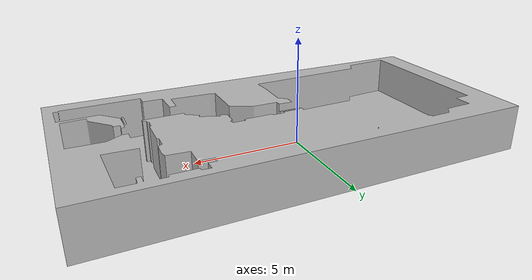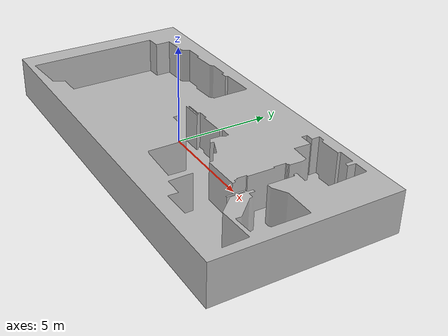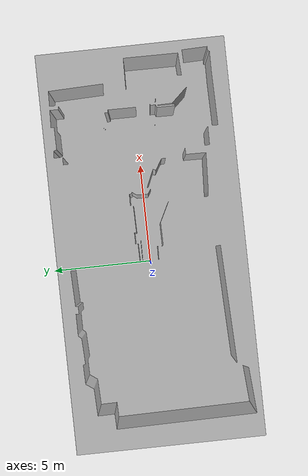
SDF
<?xml version="1.0" encoding="UTF-8" ?>
<sdf version="1.4">
  <world name="default">
    <scene>
      <ambient>0.5 0.5 0.5 1</ambient>
      <background>0.5 0.5 0.5 1</background>
      <shadows>false</shadows>
    </scene>
    <physics name='default_physics' default='0' type='ode'>
      <gravity>0 0 -9.8066</gravity>
      <ode>
        <solver>
          <type>quick</type>
          <iters>1</iters>
          <sor>1.3</sor>
          <use_dynamic_moi_rescaling>0</use_dynamic_moi_rescaling>
        </solver>
        <constraints>
          <cfm>0</cfm>
          <erp>0.2</erp>
          <contact_max_correcting_vel>100</contact_max_correcting_vel>
          <contact_surface_layer>0.001</contact_surface_layer>
        </constraints>
      </ode>
      <max_step_size>0.01</max_step_size>
      <real_time_factor>1</real_time_factor>
      <real_time_update_rate>100</real_time_update_rate>
    </physics>
    <plugin name="stopPhysics" filename="libStopPhysicsPlugin.so">
      <robotNamespace/>
    </plugin>
    <light type="directional" name="directional_light_1">
      <pose>0 20 20 0.1 0.1 0</pose>
      <diffuse>1 1 1 1</diffuse>
      <specular>1 1 1 1</specular>
      <attenuation>
        <range>300</range>
      </attenuation>
      <direction>0.1 0.1 -1</direction>
      <cast_shadows>false</cast_shadows>
    </light>
    <model name="small_indoor_scenario">
      <link name="120m_landscape_smooth_tri_link">
        <pose>0 0 0 0 0 0</pose>
        <collision name="small_indoor_scenario_collision">
          <geometry>
            <mesh>
              <uri>file://small_indoor_scenario.dae</uri>
              <scale>1 1 1</scale>
            </mesh>
          </geometry>
        </collision>
        <visual name="small_indoor_scenario">
          <geometry>
            <mesh>
              <uri>file://small_indoor_scenario.dae</uri>
              <scale>1 1 1</scale>
            </mesh>
          </geometry>
          <cast_shadows>false</cast_shadows>
        </visual>
      </link>
      <static>true</static>
    </model>
    <plugin name='gazebo_octomap' filename='librotors_gazebo_octomap_plugin.so'/>
  </world>
</sdf>
